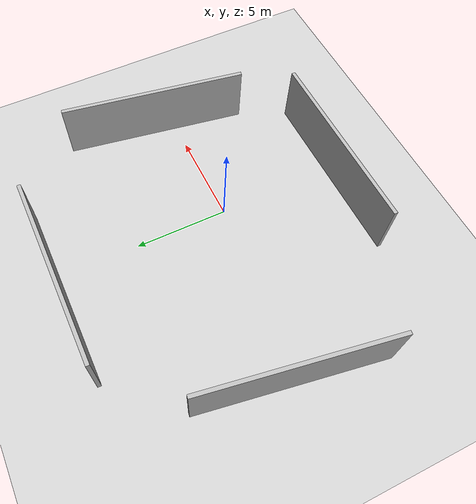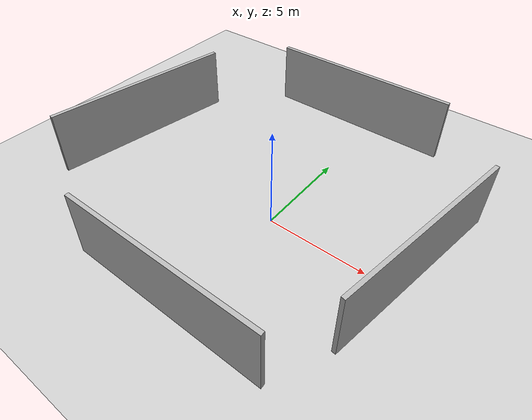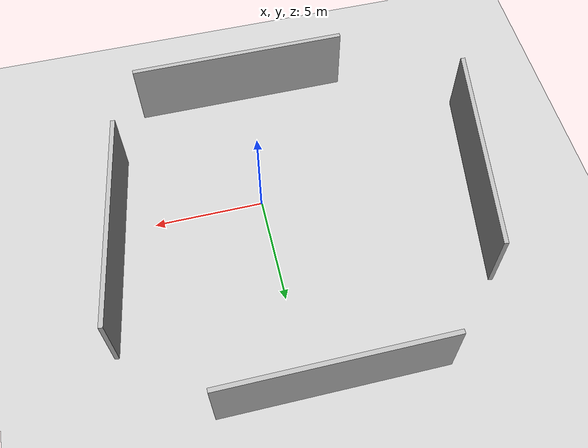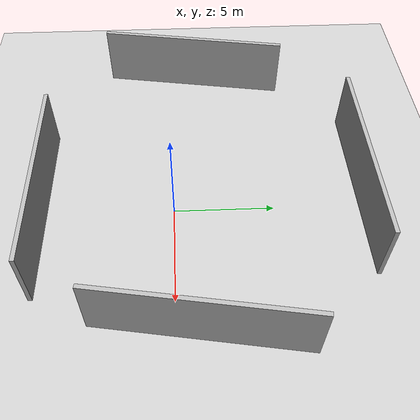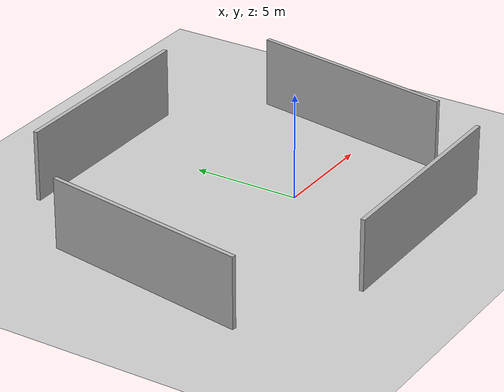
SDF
<sdf version="1.10">
 <world name="empty_world">
  <plugin name="gz::sim::systems::Physics" filename="gz-sim-physics-system"/>
  <plugin name="gz::sim::systems::UserCommands" filename="gz-sim-user-commands-system"/>
  <plugin name="gz::sim::systems::SceneBroadcaster" filename="gz-sim-scene-broadcaster-system"/>
  <plugin name="gz::sim::systems::Imu" filename="gz-sim-imu-system"/>
  <plugin name="gz::sim::systems::Sensors" filename="gz-sim-sensors-system">
   <render_engine>ogre2</render_engine>
  </plugin>
  <gravity>0 0 -9.8000000000000007</gravity>
  <magnetic_field>6.0000000000000002e-06 2.3e-05 -4.1999999999999998e-05</magnetic_field>
  <atmosphere type="adiabatic"/>
  <physics type="ode">
   <max_step_size>0.001</max_step_size>
   <real_time_factor>1</real_time_factor>
   <real_time_update_rate>100</real_time_update_rate>
  </physics>
  <scene>
   <ambient>0.899999976 0.899999976 0.899999976 1</ambient>
   <background>0.100000001 0.100000001 1 1</background>
   <grid>false</grid>
   <shadows>false</shadows>
  </scene>
  <model name="ground_plane">
   <static>true</static>
   <link name="link">
    <collision name="collision">
     <geometry><plane><normal>0 0 1</normal><size>1 1</size></plane></geometry>
    </collision>
    <visual name="visual">
     <geometry><plane><normal>0 0 1</normal><size>100 100</size></plane></geometry>
     <material>
      <ambient>0.800000012 0.800000012 0.800000012 1</ambient>
      <diffuse>0.800000012 0.800000012 0.800000012 1</diffuse>
      <specular>0.800000012 0.800000012 0.800000012 1</specular>
     </material>
    </visual>
    <inertial>
     <mass>1</mass>
     <inertia><ixx>1</ixx><ixy>0</ixy><ixz>0</ixz><iyy>1</iyy><iyz>0</iyz><izz>1</izz></inertia>
    </inertial>
   </link>
  </model>
  <model name="cutout_wall">
   <static>true</static>
   <link name="link">
    <pose>0 0 1.3999999999999999 0 0 0</pose>
    <collision name="collision">
     <geometry><box><size>10 0.20000000000000001 3.7999999999999998</size></box></geometry>
     <surface>
      <contact>
       <collide_without_contact>true</collide_without_contact>
       <collide_without_contact_bitmask>2</collide_without_contact_bitmask>
      </contact>
     </surface>
    </collision>
    <visual name="visual">
     <cast_shadows>false</cast_shadows>
     <geometry><box><size>10 0.20000000000000001 3.7999999999999998</size></box></geometry>
     <material>
      <script>
       <uri>file:///home/kafando/.gz/fuel/fuel.gazebosim.org/openrobotics/models/cutout wall/2/materials/scripts</uri>
       <uri>https://fuel.gazebosim.org/1.0/openrobotics/models/cutout wall/2/files/materials/textures</uri>
       <name>drc_practice/cutout_wall</name>
      </script>
     </material>
    </visual>
    <sensor name="mud_contact" type="contact">
     <always_on>true</always_on>
     <update_rate>1000</update_rate>
     <contact><collision>collision</collision><topic>__default_topic__</topic></contact>
    </sensor>
    <inertial>
     <mass>1</mass>
     <inertia><ixx>1</ixx><ixy>0</ixy><ixz>0</ixz><iyy>1</iyy><iyz>0</iyz><izz>1</izz></inertia>
    </inertial>
   </link>
   <plugin name="gazebo_mud" filename="libMudPlugin.so">
    <contact_sensor_name>link/mud_contact</contact_sensor_name>
    <stiffness>0.0</stiffness>
    <damping>40.0</damping>
    <contact_surface_bitmask>2</contact_surface_bitmask>
    <link_name>drill::link</link_name>
   </plugin>
   <pose>-0.35352970150046303 -6.4650427723751775 0 0 0 0</pose>
  </model>
  <model name="cutout_wall_0">
   <static>true</static>
   <link name="link">
    <pose>0 0 1.3999999999999999 0 0 0</pose>
    <collision name="collision">
     <geometry><box><size>10 0.20000000000000001 3.7999999999999998</size></box></geometry>
     <surface>
      <contact>
       <collide_without_contact>true</collide_without_contact>
       <collide_without_contact_bitmask>2</collide_without_contact_bitmask>
      </contact>
     </surface>
    </collision>
    <visual name="visual">
     <cast_shadows>false</cast_shadows>
     <geometry><box><size>10 0.20000000000000001 3.7999999999999998</size></box></geometry>
     <material>
      <script>
       <uri>file:///home/kafando/.gz/fuel/fuel.gazebosim.org/openrobotics/models/cutout wall/2/materials/scripts</uri>
       <uri>https://fuel.gazebosim.org/1.0/openrobotics/models/cutout wall/2/files/materials/textures</uri>
       <name>drc_practice/cutout_wall</name>
      </script>
     </material>
    </visual>
    <sensor name="mud_contact" type="contact">
     <always_on>true</always_on>
     <update_rate>1000</update_rate>
     <contact><collision>collision</collision><topic>__default_topic__</topic></contact>
    </sensor>
    <inertial>
     <mass>1</mass>
     <inertia><ixx>1</ixx><ixy>0</ixy><ixz>0</ixz><iyy>1</iyy><iyz>0</iyz><izz>1</izz></inertia>
    </inertial>
   </link>
   <plugin name="gazebo_mud" filename="libMudPlugin.so">
    <contact_sensor_name>link/mud_contact</contact_sensor_name>
    <stiffness>0.0</stiffness>
    <damping>40.0</damping>
    <contact_surface_bitmask>2</contact_surface_bitmask>
    <link_name>drill::link</link_name>
   </plugin>
   <pose>-1.0576399564743042 9.4135475158691406 0 0 0 0</pose>
  </model>
  <model name="cutout_wall_1">
   <static>true</static>
   <link name="link">
    <pose>0 0 1.3999999999999999 0 0 0</pose>
    <collision name="collision">
     <geometry><box><size>10 0.20000000000000001 3.7999999999999998</size></box></geometry>
     <surface>
      <contact>
       <collide_without_contact>true</collide_without_contact>
       <collide_without_contact_bitmask>2</collide_without_contact_bitmask>
      </contact>
     </surface>
    </collision>
    <visual name="visual">
     <cast_shadows>false</cast_shadows>
     <geometry><box><size>10 0.20000000000000001 3.7999999999999998</size></box></geometry>
     <material>
      <script>
       <uri>file:///home/kafando/.gz/fuel/fuel.gazebosim.org/openrobotics/models/cutout wall/2/materials/scripts</uri>
       <uri>https://fuel.gazebosim.org/1.0/openrobotics/models/cutout wall/2/files/materials/textures</uri>
       <name>drc_practice/cutout_wall</name>
      </script>
     </material>
    </visual>
    <sensor name="mud_contact" type="contact">
     <always_on>true</always_on>
     <update_rate>1000</update_rate>
     <contact><collision>collision</collision><topic>__default_topic__</topic></contact>
    </sensor>
    <inertial>
     <mass>1</mass>
     <inertia><ixx>1</ixx><ixy>0</ixy><ixz>0</ixz><iyy>1</iyy><iyz>0</iyz><izz>1</izz></inertia>
    </inertial>
   </link>
   <plugin name="gazebo_mud" filename="libMudPlugin.so">
    <contact_sensor_name>link/mud_contact</contact_sensor_name>
    <stiffness>0.0</stiffness>
    <damping>40.0</damping>
    <contact_surface_bitmask>2</contact_surface_bitmask>
    <link_name>drill::link</link_name>
   </plugin>
   <pose>-9.8104400634765625 1.2535703182220459 0 0 0 1.408440031541464</pose>
  </model>
  <model name="cutout_wall_1_1">
   <static>true</static>
   <link name="link">
    <pose>0 0 1.3999999999999999 0 0 0</pose>
    <collision name="collision">
     <geometry><box><size>10 0.20000000000000001 3.7999999999999998</size></box></geometry>
     <surface>
      <contact>
       <collide_without_contact>true</collide_without_contact>
       <collide_without_contact_bitmask>2</collide_without_contact_bitmask>
      </contact>
     </surface>
    </collision>
    <visual name="visual">
     <cast_shadows>false</cast_shadows>
     <geometry><box><size>10 0.20000000000000001 3.7999999999999998</size></box></geometry>
     <material>
      <script>
       <uri>file:///home/kafando/.gz/fuel/fuel.gazebosim.org/openrobotics/models/cutout wall/2/materials/scripts</uri>
       <uri>https://fuel.gazebosim.org/1.0/openrobotics/models/cutout wall/2/files/materials/textures</uri>
       <name>drc_practice/cutout_wall</name>
      </script>
     </material>
    </visual>
    <sensor name="mud_contact" type="contact">
     <always_on>true</always_on>
     <update_rate>1000</update_rate>
     <contact><collision>collision</collision><topic>__default_topic__</topic></contact>
    </sensor>
   </link>
   <plugin name="gazebo_mud" filename="libMudPlugin.so">
    <contact_sensor_name>link/mud_contact</contact_sensor_name>
    <stiffness>0.0</stiffness>
    <damping>40.0</damping>
    <contact_surface_bitmask>2</contact_surface_bitmask>
    <link_name>drill::link</link_name>
   </plugin>
   <pose>6.683450213730068 1.0825442646963168 0 0 0 1.4084400922378928</pose>
  </model>
  <light name="sun" type="directional">
   <pose>0 0 10 0 0 0</pose>
   <intensity>1</intensity>
   <direction>-0.5 0.10000000000000001 -0.90000000000000002</direction>
   <diffuse>0.800000012 0.800000012 0.800000012 1</diffuse>
   <specular>0.200000003 0.200000003 0.200000003 1</specular>
   <attenuation>
    <range>1000</range>
    <linear>0.01</linear>
    <constant>0.90000000000000002</constant>
    <quadratic>0.001</quadratic>
   </attenuation>
   <spot><inner_angle>0</inner_angle><outer_angle>0</outer_angle><falloff>0</falloff></spot>
  </light>
 </world>
</sdf>
